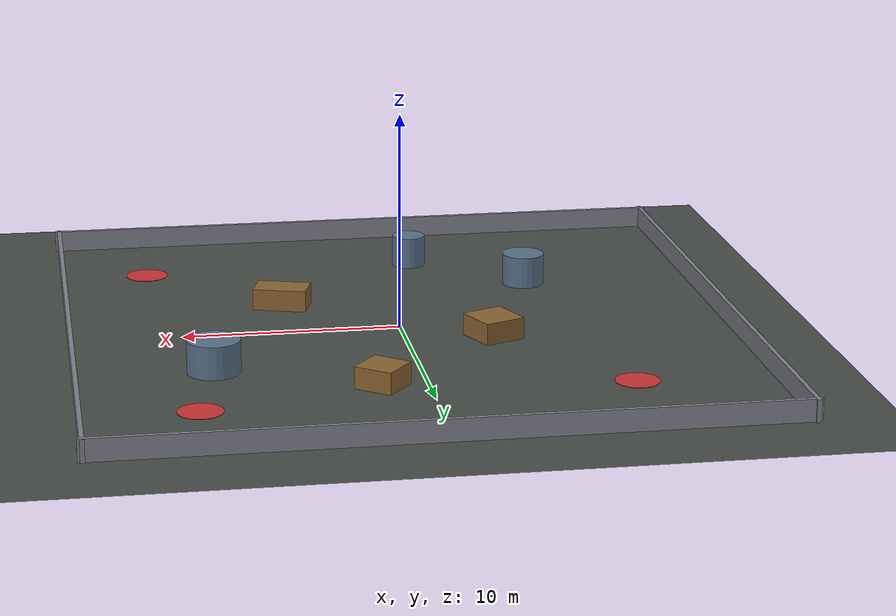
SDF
<?xml version="1.0" ?>
<sdf version="1.9">
  <world name="arena">
    <physics name="1ms" type="ignored">
      <max_step_size>0.004</max_step_size>
      <real_time_factor>1.0</real_time_factor>
    </physics>
    <plugin filename="gz-sim-physics-system" name="gz::sim::systems::Physics"/>
    <plugin filename="gz-sim-user-commands-system" name="gz::sim::systems::UserCommands"/>
    <plugin filename="gz-sim-scene-broadcaster-system" name="gz::sim::systems::SceneBroadcaster"/>
    <plugin filename="gz-sim-sensors-system" name="gz::sim::systems::Sensors">
      <render_engine>ogre2</render_engine>
    </plugin>

    <light type="directional" name="sun">
      <cast_shadows>false</cast_shadows>
      <pose>0 0 10 0 0 0</pose>
      <diffuse>0.9 0.9 0.9 1</diffuse>
      <specular>0.2 0.2 0.2 1</specular>
      <direction>-0.5 0.1 -0.9</direction>
    </light>

    <model name="ground_plane">
      <static>true</static>
      <link name="link">
        <collision name="collision">
          <geometry><plane><normal>0 0 1</normal><size>60 60</size></plane></geometry>
        </collision>
        <visual name="visual">
          <geometry><plane><normal>0 0 1</normal><size>60 60</size></plane></geometry>
          <material><ambient>0.28 0.30 0.28 1</ambient><diffuse>0.28 0.30 0.28 1</diffuse></material>
        </visual>
      </link>
    </model>

    <!-- Arena walls: 30 x 30 m interior -->
    <model name="wall_north">
      <static>true</static><pose>0 15.1 0.5 0 0 0</pose>
      <link name="link">
        <collision name="c"><geometry><box><size>30.6 0.2 1.0</size></box></geometry></collision>
        <visual name="v"><geometry><box><size>30.6 0.2 1.0</size></box></geometry>
          <material><ambient>0.5 0.5 0.55 1</ambient><diffuse>0.5 0.5 0.55 1</diffuse></material></visual>
      </link>
    </model>
    <model name="wall_south">
      <static>true</static><pose>0 -15.1 0.5 0 0 0</pose>
      <link name="link">
        <collision name="c"><geometry><box><size>30.6 0.2 1.0</size></box></geometry></collision>
        <visual name="v"><geometry><box><size>30.6 0.2 1.0</size></box></geometry>
          <material><ambient>0.5 0.5 0.55 1</ambient><diffuse>0.5 0.5 0.55 1</diffuse></material></visual>
      </link>
    </model>
    <model name="wall_east">
      <static>true</static><pose>15.1 0 0.5 0 0 0</pose>
      <link name="link">
        <collision name="c"><geometry><box><size>0.2 30.6 1.0</size></box></geometry></collision>
        <visual name="v"><geometry><box><size>0.2 30.6 1.0</size></box></geometry>
          <material><ambient>0.5 0.5 0.55 1</ambient><diffuse>0.5 0.5 0.55 1</diffuse></material></visual>
      </link>
    </model>
    <model name="wall_west">
      <static>true</static><pose>-15.1 0 0.5 0 0 0</pose>
      <link name="link">
        <collision name="c"><geometry><box><size>0.2 30.6 1.0</size></box></geometry></collision>
        <visual name="v"><geometry><box><size>0.2 30.6 1.0</size></box></geometry>
          <material><ambient>0.5 0.5 0.55 1</ambient><diffuse>0.5 0.5 0.55 1</diffuse></material></visual>
      </link>
    </model>

    <!-- Obstacles -->
    <model name="crate_1">
      <static>true</static><pose>-4 2 0.5 0 0 0.4</pose>
      <link name="link">
        <collision name="c"><geometry><box><size>2.0 2.0 1.0</size></box></geometry></collision>
        <visual name="v"><geometry><box><size>2.0 2.0 1.0</size></box></geometry>
          <material><ambient>0.55 0.4 0.2 1</ambient><diffuse>0.55 0.4 0.2 1</diffuse></material></visual>
      </link>
    </model>
    <model name="crate_2">
      <static>true</static><pose>5 -4 0.5 0 0 -0.3</pose>
      <link name="link">
        <collision name="c"><geometry><box><size>2.5 1.5 1.0</size></box></geometry></collision>
        <visual name="v"><geometry><box><size>2.5 1.5 1.0</size></box></geometry>
          <material><ambient>0.55 0.4 0.2 1</ambient><diffuse>0.55 0.4 0.2 1</diffuse></material></visual>
      </link>
    </model>
    <model name="crate_3">
      <static>true</static><pose>2 8 0.5 0 0 0.9</pose>
      <link name="link">
        <collision name="c"><geometry><box><size>1.8 1.8 1.0</size></box></geometry></collision>
        <visual name="v"><geometry><box><size>1.8 1.8 1.0</size></box></geometry>
          <material><ambient>0.55 0.4 0.2 1</ambient><diffuse>0.55 0.4 0.2 1</diffuse></material></visual>
      </link>
    </model>
    <model name="silo_1">
      <static>true</static><pose>-7 -6 0.75 0 0 0</pose>
      <link name="link">
        <collision name="c"><geometry><cylinder><radius>1.0</radius><length>1.5</length></cylinder></geometry></collision>
        <visual name="v"><geometry><cylinder><radius>1.0</radius><length>1.5</length></cylinder></geometry>
          <material><ambient>0.35 0.45 0.55 1</ambient><diffuse>0.35 0.45 0.55 1</diffuse></material></visual>
      </link>
    </model>
    <model name="silo_2">
      <static>true</static><pose>9 5 0.75 0 0 0</pose>
      <link name="link">
        <collision name="c"><geometry><cylinder><radius>1.2</radius><length>1.5</length></cylinder></geometry></collision>
        <visual name="v"><geometry><cylinder><radius>1.2</radius><length>1.5</length></cylinder></geometry>
          <material><ambient>0.35 0.45 0.55 1</ambient><diffuse>0.35 0.45 0.55 1</diffuse></material></visual>
      </link>
    </model>
    <model name="silo_3">
      <static>true</static><pose>-2 -10 0.75 0 0 0</pose>
      <link name="link">
        <collision name="c"><geometry><cylinder><radius>0.8</radius><length>1.5</length></cylinder></geometry></collision>
        <visual name="v"><geometry><cylinder><radius>0.8</radius><length>1.5</length></cylinder></geometry>
          <material><ambient>0.35 0.45 0.55 1</ambient><diffuse>0.35 0.45 0.55 1</diffuse></material></visual>
      </link>
    </model>

    <!-- Delivery pads (visual only, no collision) -->
    <model name="pad_A">
      <static>true</static><pose>10 10 0.01 0 0 0</pose>
      <link name="link">
        <visual name="v"><geometry><cylinder><radius>1.0</radius><length>0.02</length></cylinder></geometry>
          <material><ambient>0.8 0.2 0.2 1</ambient><diffuse>0.8 0.2 0.2 1</diffuse></material></visual>
      </link>
    </model>
    <model name="pad_B">
      <static>true</static><pose>11 -10 0.01 0 0 0</pose>
      <link name="link">
        <visual name="v"><geometry><cylinder><radius>1.0</radius><length>0.02</length></cylinder></geometry>
          <material><ambient>0.8 0.2 0.2 1</ambient><diffuse>0.8 0.2 0.2 1</diffuse></material></visual>
      </link>
    </model>
    <model name="pad_C">
      <static>true</static><pose>-9 9 0.01 0 0 0</pose>
      <link name="link">
        <visual name="v"><geometry><cylinder><radius>1.0</radius><length>0.02</length></cylinder></geometry>
          <material><ambient>0.8 0.2 0.2 1</ambient><diffuse>0.8 0.2 0.2 1</diffuse></material></visual>
      </link>
    </model>
  </world>
</sdf>
